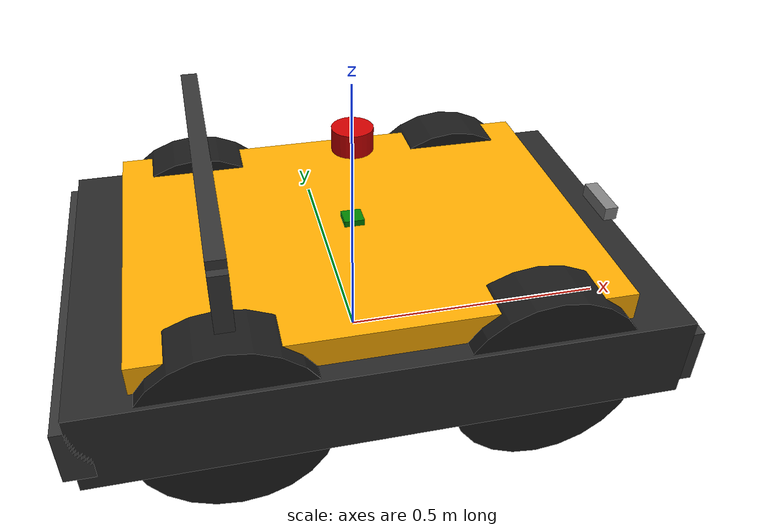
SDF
<?xml version="1.0" ?>
<sdf version="1.9">
  <model name="husky_a200">
    <static>false</static>

    <!-- Ground truth pose publisher (world frame) -->
    <plugin filename="gz-sim-pose-publisher-system" name="gz::sim::systems::PosePublisher">
      <publish_link_pose>false</publish_link_pose>
      <publish_collision_pose>false</publish_collision_pose>
      <publish_visual_pose>false</publish_visual_pose>
      <publish_nested_model_pose>false</publish_nested_model_pose>
      <publish_model_pose>true</publish_model_pose>
      <update_frequency>10</update_frequency>
    </plugin>

    <!-- ==================== BASE FOOTPRINT ==================== -->
    <link name="base_footprint"/>

    <!-- ==================== CHASSIS ==================== -->
    <!-- Husky A200: 990x670x390 mm, 50 kg -->
    <link name="base_link">
      <pose relative_to="base_footprint">0 0 0.165 0 0 0</pose>
      <inertial>
        <mass>50.0</mass>
        <inertia>
          <!-- Box inertia: m/12 * (h^2+d^2), etc. for 0.99x0.67x0.20 -->
          <ixx>1.924</ixx>
          <iyy>4.500</iyy>
          <izz>5.558</izz>
          <ixy>0</ixy><ixz>0</ixz><iyz>0</iyz>
        </inertia>
      </inertial>
      <!-- Main body (lower dark chassis) -->
      <visual name="chassis_base_visual">
        <pose>0 0 -0.05 0 0 0</pose>
        <geometry>
          <box><size>0.99 0.67 0.15</size></box>
        </geometry>
        <material>
          <ambient>0.15 0.15 0.15 1</ambient>
          <diffuse>0.15 0.15 0.15 1</diffuse>
        </material>
      </visual>
      <!-- Top cover (yellow — RAL 1003 Husky) -->
      <visual name="chassis_top_visual">
        <pose>0 0 0.05 0 0 0</pose>
        <geometry>
          <box><size>0.80 0.60 0.05</size></box>
        </geometry>
        <material>
          <!-- RAL 1003 Signal Yellow: #F9A900 -->
          <ambient>0.976 0.663 0.0 1</ambient>
          <diffuse>0.976 0.663 0.0 1</diffuse>
        </material>
      </visual>
      <!-- Bumpers front/rear (dark) -->
      <visual name="bumper_front_visual">
        <pose>0.49 0 -0.05 0 0 0</pose>
        <geometry>
          <box><size>0.05 0.67 0.10</size></box>
        </geometry>
        <material>
          <ambient>0.2 0.2 0.2 1</ambient>
          <diffuse>0.2 0.2 0.2 1</diffuse>
        </material>
      </visual>
      <visual name="bumper_rear_visual">
        <pose>-0.49 0 -0.05 0 0 0</pose>
        <geometry>
          <box><size>0.05 0.67 0.10</size></box>
        </geometry>
        <material>
          <ambient>0.2 0.2 0.2 1</ambient>
          <diffuse>0.2 0.2 0.2 1</diffuse>
        </material>
      </visual>
      <collision name="chassis_collision">
        <geometry>
          <box><size>0.99 0.67 0.20</size></box>
        </geometry>
      </collision>
    </link>

    <joint name="base_footprint_joint" type="fixed">
      <parent>base_footprint</parent>
      <child>base_link</child>
    </joint>

    <!-- ==================== WHEELS (4-wheel skid steer) ==================== -->
    <!-- Husky: 330 mm diameter (radius 0.165 m), width 100 mm -->
    <!-- Wheel separation: 555 mm (track width) -->
    <!-- Wheelbase: 512 mm (front-rear axle distance) -->

    <!-- Front Left Wheel -->
    <link name="front_left_wheel">
      <pose relative_to="base_link">0.256 0.2775 -0.065 -1.5707963 0 0</pose>
      <inertial>
        <mass>2.5</mass>
        <inertia>
          <ixx>0.0181</ixx>
          <iyy>0.0181</iyy>
          <izz>0.0340</izz>
          <ixy>0</ixy><ixz>0</ixz><iyz>0</iyz>
        </inertia>
      </inertial>
      <visual name="visual">
        <geometry>
          <cylinder><radius>0.165</radius><length>0.10</length></cylinder>
        </geometry>
        <material>
          <ambient>0.1 0.1 0.1 1</ambient>
          <diffuse>0.1 0.1 0.1 1</diffuse>
        </material>
      </visual>
      <collision name="collision">
        <geometry>
          <cylinder><radius>0.165</radius><length>0.10</length></cylinder>
        </geometry>
        <surface>
          <friction><ode><mu>5.0</mu><mu2>3.0</mu2></ode></friction>
          <contact><ode><kp>1e6</kp><kd>100</kd><min_depth>0.0</min_depth><max_vel>0.01</max_vel></ode></contact>
        </surface>
      </collision>
    </link>
    <joint name="front_left_wheel_joint" type="revolute">
      <parent>base_link</parent>
      <child>front_left_wheel</child>
      <axis>
        <xyz>0 0 1</xyz>
        <limit><lower>-1e+16</lower><upper>1e+16</upper></limit>
      </axis>
    </joint>

    <!-- Front Right Wheel -->
    <link name="front_right_wheel">
      <pose relative_to="base_link">0.256 -0.2775 -0.065 -1.5707963 0 0</pose>
      <inertial>
        <mass>2.5</mass>
        <inertia>
          <ixx>0.0181</ixx>
          <iyy>0.0181</iyy>
          <izz>0.0340</izz>
          <ixy>0</ixy><ixz>0</ixz><iyz>0</iyz>
        </inertia>
      </inertial>
      <visual name="visual">
        <geometry>
          <cylinder><radius>0.165</radius><length>0.10</length></cylinder>
        </geometry>
        <material>
          <ambient>0.1 0.1 0.1 1</ambient>
          <diffuse>0.1 0.1 0.1 1</diffuse>
        </material>
      </visual>
      <collision name="collision">
        <geometry>
          <cylinder><radius>0.165</radius><length>0.10</length></cylinder>
        </geometry>
        <surface>
          <friction><ode><mu>5.0</mu><mu2>3.0</mu2></ode></friction>
          <contact><ode><kp>1e6</kp><kd>100</kd><min_depth>0.0</min_depth><max_vel>0.01</max_vel></ode></contact>
        </surface>
      </collision>
    </link>
    <joint name="front_right_wheel_joint" type="revolute">
      <parent>base_link</parent>
      <child>front_right_wheel</child>
      <axis>
        <xyz>0 0 1</xyz>
        <limit><lower>-1e+16</lower><upper>1e+16</upper></limit>
      </axis>
    </joint>

    <!-- Rear Left Wheel -->
    <link name="rear_left_wheel">
      <pose relative_to="base_link">-0.256 0.2775 -0.065 -1.5707963 0 0</pose>
      <inertial>
        <mass>2.5</mass>
        <inertia>
          <ixx>0.0181</ixx>
          <iyy>0.0181</iyy>
          <izz>0.0340</izz>
          <ixy>0</ixy><ixz>0</ixz><iyz>0</iyz>
        </inertia>
      </inertial>
      <visual name="visual">
        <geometry>
          <cylinder><radius>0.165</radius><length>0.10</length></cylinder>
        </geometry>
        <material>
          <ambient>0.1 0.1 0.1 1</ambient>
          <diffuse>0.1 0.1 0.1 1</diffuse>
        </material>
      </visual>
      <collision name="collision">
        <geometry>
          <cylinder><radius>0.165</radius><length>0.10</length></cylinder>
        </geometry>
        <surface>
          <friction><ode><mu>5.0</mu><mu2>3.0</mu2></ode></friction>
          <contact><ode><kp>1e6</kp><kd>100</kd><min_depth>0.0</min_depth><max_vel>0.01</max_vel></ode></contact>
        </surface>
      </collision>
    </link>
    <joint name="rear_left_wheel_joint" type="revolute">
      <parent>base_link</parent>
      <child>rear_left_wheel</child>
      <axis>
        <xyz>0 0 1</xyz>
        <limit><lower>-1e+16</lower><upper>1e+16</upper></limit>
      </axis>
    </joint>

    <!-- Rear Right Wheel -->
    <link name="rear_right_wheel">
      <pose relative_to="base_link">-0.256 -0.2775 -0.065 -1.5707963 0 0</pose>
      <inertial>
        <mass>2.5</mass>
        <inertia>
          <ixx>0.0181</ixx>
          <iyy>0.0181</iyy>
          <izz>0.0340</izz>
          <ixy>0</ixy><ixz>0</ixz><iyz>0</iyz>
        </inertia>
      </inertial>
      <visual name="visual">
        <geometry>
          <cylinder><radius>0.165</radius><length>0.10</length></cylinder>
        </geometry>
        <material>
          <ambient>0.1 0.1 0.1 1</ambient>
          <diffuse>0.1 0.1 0.1 1</diffuse>
        </material>
      </visual>
      <collision name="collision">
        <geometry>
          <cylinder><radius>0.165</radius><length>0.10</length></cylinder>
        </geometry>
        <surface>
          <friction><ode><mu>5.0</mu><mu2>3.0</mu2></ode></friction>
          <contact><ode><kp>1e6</kp><kd>100</kd><min_depth>0.0</min_depth><max_vel>0.01</max_vel></ode></contact>
        </surface>
      </collision>
    </link>
    <joint name="rear_right_wheel_joint" type="revolute">
      <parent>base_link</parent>
      <child>rear_right_wheel</child>
      <axis>
        <xyz>0 0 1</xyz>
        <limit><lower>-1e+16</lower><upper>1e+16</upper></limit>
      </axis>
    </joint>

    <!-- ==================== SENSOR ARCH (top rail) ==================== -->
    <link name="sensor_arch">
      <pose relative_to="base_link">0 0 0.13 0 0 0</pose>
      <inertial>
        <mass>1.0</mass>
        <inertia>
          <ixx>0.01</ixx><iyy>0.01</iyy><izz>0.01</izz>
          <ixy>0</ixy><ixz>0</ixz><iyz>0</iyz>
        </inertia>
      </inertial>
      <!-- Left upright -->
      <visual name="arch_left">
        <pose>-0.25 0.30 0.05 0 0 0</pose>
        <geometry><box><size>0.03 0.03 0.10</size></box></geometry>
        <material><ambient>0.2 0.2 0.2 1</ambient><diffuse>0.2 0.2 0.2 1</diffuse></material>
      </visual>
      <!-- Right upright -->
      <visual name="arch_right">
        <pose>-0.25 -0.30 0.05 0 0 0</pose>
        <geometry><box><size>0.03 0.03 0.10</size></box></geometry>
        <material><ambient>0.2 0.2 0.2 1</ambient><diffuse>0.2 0.2 0.2 1</diffuse></material>
      </visual>
      <!-- Cross bar -->
      <visual name="arch_cross">
        <pose>-0.25 0 0.10 0 0 0</pose>
        <geometry><box><size>0.03 0.60 0.03</size></box></geometry>
        <material><ambient>0.2 0.2 0.2 1</ambient><diffuse>0.2 0.2 0.2 1</diffuse></material>
      </visual>
    </link>
    <joint name="sensor_arch_joint" type="fixed">
      <parent>base_link</parent>
      <child>sensor_arch</child>
    </joint>

    <!-- ==================== INTEL D435i RGBD CAMERA ==================== -->
    <!-- Mounted front-center, ~0.30 m above ground -->
    <link name="camera_link">
      <pose relative_to="base_link">0.48 0 0.05 0 0 0</pose>
      <inertial>
        <mass>0.072</mass>
        <inertia>
          <ixx>0.00001</ixx><iyy>0.00001</iyy><izz>0.00001</izz>
          <ixy>0</ixy><ixz>0</ixz><iyz>0</iyz>
        </inertia>
      </inertial>
      <visual name="camera_visual">
        <geometry><box><size>0.025 0.09 0.025</size></box></geometry>
        <material>
          <ambient>0.5 0.5 0.5 1</ambient>
          <diffuse>0.5 0.5 0.5 1</diffuse>
        </material>
      </visual>
      <collision name="camera_collision">
        <geometry><box><size>0.025 0.09 0.025</size></box></geometry>
      </collision>

      <!-- RGBD Camera: D435i depth specs -->
      <sensor name="rgbd_camera" type="rgbd_camera">
        <pose>0 0 0 0 0 0</pose>
        <always_on>true</always_on>
        <update_rate>30</update_rate>
        <topic>rgbd_camera</topic>
        <camera>
          <!-- D435i depth FOV: 85.2° horizontal -->
          <horizontal_fov>1.4870</horizontal_fov>
          <image>
            <width>640</width>
            <height>480</height>
            <format>R8G8B8</format>
          </image>
          <clip>
            <near>0.4</near>
            <far>300.0</far>
          </clip>
          <depth_camera>
            <clip>
              <near>0.4</near>
              <far>10.0</far>
            </clip>
          </depth_camera>
          <noise>
            <type>gaussian</type>
            <mean>0</mean>
            <stddev>0.005</stddev>
          </noise>
          <lens>
            <intrinsics>
              <!-- D435i at 640x480 -->
              <fx>382.0</fx>
              <fy>382.0</fy>
              <cx>320.0</cx>
              <cy>240.0</cy>
              <s>0</s>
            </intrinsics>
          </lens>
        </camera>
      </sensor>

      <!-- D435i onboard IMU -->
      <sensor name="camera_imu" type="imu">
        <always_on>true</always_on>
        <update_rate>200</update_rate>
        <topic>camera_imu</topic>
      </sensor>
    </link>

    <joint name="camera_joint" type="fixed">
      <parent>base_link</parent>
      <child>camera_link</child>
    </joint>

    <!-- ==================== PHIDGETS SPATIAL 1042 IMU ==================== -->
    <!-- Mounted on top plate, center -->
    <link name="imu_link">
      <pose relative_to="base_link">0 0 0.08 0 0 0</pose>
      <inertial>
        <mass>0.05</mass>
        <inertia>
          <ixx>0.000005</ixx><iyy>0.000005</iyy><izz>0.000005</izz>
          <ixy>0</ixy><ixz>0</ixz><iyz>0</iyz>
        </inertia>
      </inertial>
      <visual name="imu_visual">
        <geometry><box><size>0.036 0.036 0.012</size></box></geometry>
        <material>
          <ambient>0.0 0.4 0.0 1</ambient>
          <diffuse>0.0 0.5 0.0 1</diffuse>
        </material>
      </visual>

      <!-- Phidgets 1042: ±8g accel, ±2000°/s gyro, 250 Hz -->
      <sensor name="phidgets_imu" type="imu">
        <always_on>true</always_on>
        <update_rate>250</update_rate>
        <topic>imu/data</topic>
      </sensor>
    </link>

    <joint name="imu_joint" type="fixed">
      <parent>base_link</parent>
      <child>imu_link</child>
    </joint>

    <!-- ==================== 2D LIDAR (sim only, for Nav2) ==================== -->
    <!-- Mounted on sensor arch top, center -->
    <link name="lidar_link">
      <pose relative_to="base_link">0 0 0.24 0 0 0</pose>
      <inertial>
        <mass>0.2</mass>
        <inertia>
          <ixx>0.0001</ixx><iyy>0.0001</iyy><izz>0.0001</izz>
          <ixy>0</ixy><ixz>0</ixz><iyz>0</iyz>
        </inertia>
      </inertial>
      <visual name="lidar_visual">
        <geometry><cylinder><radius>0.035</radius><length>0.04</length></cylinder></geometry>
        <material>
          <ambient>0.8 0.0 0.0 1</ambient>
          <diffuse>0.8 0.0 0.0 1</diffuse>
        </material>
      </visual>
      <collision name="lidar_collision">
        <geometry><cylinder><radius>0.035</radius><length>0.04</length></cylinder></geometry>
      </collision>

      <sensor name="gpu_lidar" type="gpu_lidar">
        <pose>0 0 0.02 0 0 0</pose>
        <always_on>false</always_on>
        <update_rate>0</update_rate>
        <topic>lidar</topic>
        <lidar>
          <scan>
            <horizontal>
              <samples>360</samples>
              <resolution>1</resolution>
              <min_angle>-3.14159</min_angle>
              <max_angle>3.14159</max_angle>
            </horizontal>
            <vertical>
              <samples>1</samples>
              <resolution>1</resolution>
              <min_angle>0</min_angle>
              <max_angle>0</max_angle>
            </vertical>
          </scan>
          <range>
            <min>0.08</min>
            <max>12.0</max>
            <resolution>0.01</resolution>
          </range>
          <noise>
            <type>gaussian</type>
            <mean>0</mean>
            <stddev>0.01</stddev>
          </noise>
        </lidar>
      </sensor>
    </link>

    <joint name="lidar_joint" type="fixed">
      <parent>base_link</parent>
      <child>lidar_link</child>
    </joint>

    <!-- ==================== PLUGINS ==================== -->
    <!-- Skid-Steer Drive (4 wheels, left pair + right pair) -->
    <plugin filename="gz-sim-diff-drive-system"
            name="gz::sim::systems::DiffDrive">
      <left_joint>front_left_wheel_joint</left_joint>
      <left_joint>rear_left_wheel_joint</left_joint>
      <right_joint>front_right_wheel_joint</right_joint>
      <right_joint>rear_right_wheel_joint</right_joint>
      <wheel_separation>0.555</wheel_separation>
      <wheel_radius>0.165</wheel_radius>
      <max_linear_acceleration>0.5</max_linear_acceleration>
      <min_linear_acceleration>-0.5</min_linear_acceleration>
      <max_angular_acceleration>0.8</max_angular_acceleration>
      <min_angular_acceleration>-0.8</min_angular_acceleration>
      <max_linear_velocity>1.0</max_linear_velocity>
      <max_angular_velocity>1.0</max_angular_velocity>
      <topic>/cmd_vel</topic>
      <odom_topic>/odom</odom_topic>
      <tf_topic>/tf</tf_topic>
      <frame_id>odom</frame_id>
      <child_frame_id>base_footprint</child_frame_id>
      <odom_publish_frequency>50</odom_publish_frequency>
    </plugin>

    <!-- Joint State Publisher -->
    <plugin filename="gz-sim-joint-state-publisher-system"
            name="gz::sim::systems::JointStatePublisher">
      <joint_name>front_left_wheel_joint</joint_name>
      <joint_name>front_right_wheel_joint</joint_name>
      <joint_name>rear_left_wheel_joint</joint_name>
      <joint_name>rear_right_wheel_joint</joint_name>
    </plugin>

    <!-- ==================== CHASE CAMERA (3rd person) ==================== -->
    <!-- Behind and above robot, looking forward-down — like racing game view -->
    <link name="chase_camera_link">
      <pose relative_to="base_link">-2.5 0 1.8 0 0.35 0</pose>
      <inertial>
        <mass>0.01</mass>
        <inertia><ixx>0.0001</ixx><iyy>0.0001</iyy><izz>0.0001</izz></inertia>
      </inertial>
      <sensor name="chase_camera" type="camera">
        <always_on>1</always_on>
        <update_rate>2</update_rate>
        <camera>
          <horizontal_fov>1.4</horizontal_fov>
          <image><width>160</width><height>90</height></image>
          <clip><near>0.3</near><far>150</far></clip>
        </camera>
        <topic>chase_camera/image</topic>
      </sensor>
    </link>
    <joint name="chase_camera_joint" type="fixed">
      <parent>base_link</parent>
      <child>chase_camera_link</child>
    </joint>

  </model>
</sdf>
